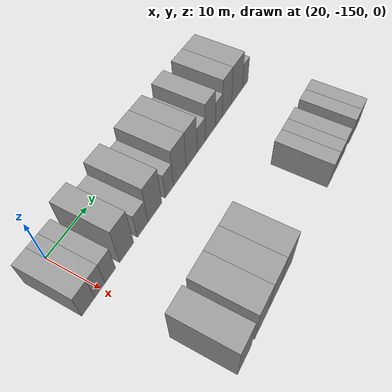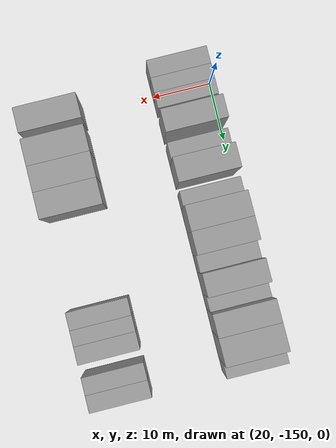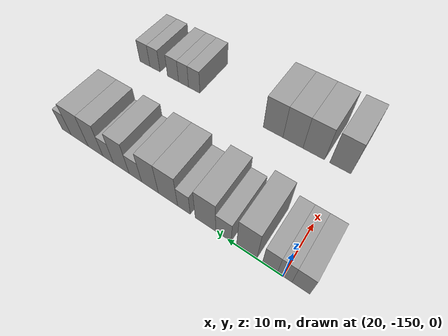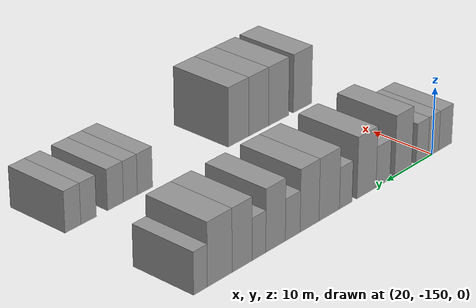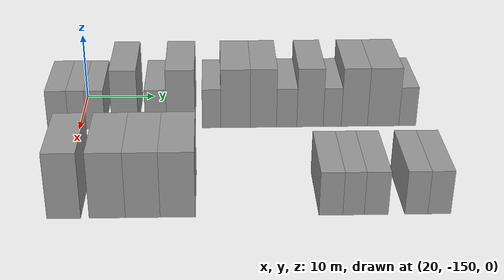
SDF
<sdf version="1.6">
 <world name="default">
  <model name="building_13">
   <static>1</static>
   <pose>25.0000 -152.9617 0 0.000000 0.000000 0.000000</pose>
   <link name="link">
    <pose>0 0 3.00 0 0 0</pose>
    <collision name="collision"><geometry><box><size>10.0000 2.9379 6.0000</size></box></geometry></collision>
    <visual name="visual">
     <cast_shadows>0</cast_shadows>
     <geometry><box><size>10.0000 2.9379 6.0000</size></box></geometry>
     <material>
      <script>
       <uri>model://grey_wall/materials/scripts</uri>
       <uri>model://grey_wall/materials/textures</uri>
       <name>vrc/grey_wall</name>
      </script>
     </material>
    </visual>
   </link>
  </model>
  <model name="building_14">
   <static>1</static>
   <pose>25.0000 -150.2623 0 0.000000 0.000000 0.000000</pose>
   <link name="link">
    <pose>0 0 3.00 0 0 0</pose>
    <collision name="collision"><geometry><box><size>10.0000 2.4608 6.0000</size></box></geometry></collision>
    <visual name="visual">
     <cast_shadows>0</cast_shadows>
     <geometry><box><size>10.0000 2.4608 6.0000</size></box></geometry>
     <material>
      <script>
       <uri>model://grey_wall/materials/scripts</uri>
       <uri>model://grey_wall/materials/textures</uri>
       <name>vrc/grey_wall</name>
      </script>
     </material>
    </visual>
   </link>
  </model>
  <model name="building_15">
   <static>1</static>
   <pose>25.0000 -147.7212 0 0.000000 0.000000 0.000000</pose>
   <link name="link">
    <pose>0 0 3.00 0 0 0</pose>
    <collision name="collision"><geometry><box><size>10.0000 2.6214 6.0000</size></box></geometry></collision>
    <visual name="visual">
     <cast_shadows>0</cast_shadows>
     <geometry><box><size>10.0000 2.6214 6.0000</size></box></geometry>
     <material>
      <script>
       <uri>model://grey_wall/materials/scripts</uri>
       <uri>model://grey_wall/materials/textures</uri>
       <name>vrc/grey_wall</name>
      </script>
     </material>
    </visual>
   </link>
  </model>
  <model name="building_16">
   <static>1</static>
   <pose>25.0000 -143.5604 0 0.000000 0.000000 0.000000</pose>
   <link name="link">
    <pose>0 0 4.50 0 0 0</pose>
    <collision name="collision"><geometry><box><size>10.0000 3.7002 9.0000</size></box></geometry></collision>
    <visual name="visual">
     <cast_shadows>0</cast_shadows>
     <geometry><box><size>10.0000 3.7002 9.0000</size></box></geometry>
     <material>
      <script>
       <uri>model://grey_wall/materials/scripts</uri>
       <uri>model://grey_wall/materials/textures</uri>
       <name>vrc/grey_wall</name>
      </script>
     </material>
    </visual>
   </link>
  </model>
  <model name="building_17">
   <static>1</static>
   <pose>25.0000 -139.2249 0 0.000000 0.000000 0.000000</pose>
   <link name="link">
    <pose>0 0 3.00 0 0 0</pose>
    <collision name="collision"><geometry><box><size>10.0000 2.9709 6.0000</size></box></geometry></collision>
    <visual name="visual">
     <cast_shadows>0</cast_shadows>
     <geometry><box><size>10.0000 2.9709 6.0000</size></box></geometry>
     <material>
      <script>
       <uri>model://grey_wall/materials/scripts</uri>
       <uri>model://grey_wall/materials/textures</uri>
       <name>vrc/grey_wall</name>
      </script>
     </material>
    </visual>
   </link>
  </model>
  <model name="building_18">
   <static>1</static>
   <pose>25.0000 -135.7327 0 0.000000 0.000000 0.000000</pose>
   <link name="link">
    <pose>0 0 4.50 0 0 0</pose>
    <collision name="collision"><geometry><box><size>10.0000 4.0134 9.0000</size></box></geometry></collision>
    <visual name="visual">
     <cast_shadows>0</cast_shadows>
     <geometry><box><size>10.0000 4.0134 9.0000</size></box></geometry>
     <material>
      <script>
       <uri>model://grey_wall/materials/scripts</uri>
       <uri>model://grey_wall/materials/textures</uri>
       <name>vrc/grey_wall</name>
      </script>
     </material>
    </visual>
   </link>
  </model>
  <model name="building_19">
   <static>1</static>
   <pose>25.0000 -131.4297 0 0.000000 0.000000 0.000000</pose>
   <link name="link">
    <pose>0 0 3.00 0 0 0</pose>
    <collision name="collision"><geometry><box><size>10.0000 2.5926 6.0000</size></box></geometry></collision>
    <visual name="visual">
     <cast_shadows>0</cast_shadows>
     <geometry><box><size>10.0000 2.5926 6.0000</size></box></geometry>
     <material>
      <script>
       <uri>model://grey_wall/materials/scripts</uri>
       <uri>model://grey_wall/materials/textures</uri>
       <name>vrc/grey_wall</name>
      </script>
     </material>
    </visual>
   </link>
  </model>
  <model name="building_20">
   <static>1</static>
   <pose>25.0000 -128.0775 0 0.000000 0.000000 0.000000</pose>
   <link name="link">
    <pose>0 0 4.50 0 0 0</pose>
    <collision name="collision"><geometry><box><size>10.0000 4.1117 9.0000</size></box></geometry></collision>
    <visual name="visual">
     <cast_shadows>0</cast_shadows>
     <geometry><box><size>10.0000 4.1117 9.0000</size></box></geometry>
     <material>
      <script>
       <uri>model://grey_wall/materials/scripts</uri>
       <uri>model://grey_wall/materials/textures</uri>
       <name>vrc/grey_wall</name>
      </script>
     </material>
    </visual>
   </link>
  </model>
  <model name="building_21">
   <static>1</static>
   <pose>25.0000 -124.1487 0 0.000000 0.000000 0.000000</pose>
   <link name="link">
    <pose>0 0 4.50 0 0 0</pose>
    <collision name="collision"><geometry><box><size>10.0000 3.7458 9.0000</size></box></geometry></collision>
    <visual name="visual">
     <cast_shadows>0</cast_shadows>
     <geometry><box><size>10.0000 3.7458 9.0000</size></box></geometry>
     <material>
      <script>
       <uri>model://grey_wall/materials/scripts</uri>
       <uri>model://grey_wall/materials/textures</uri>
       <name>vrc/grey_wall</name>
      </script>
     </material>
    </visual>
   </link>
  </model>
  <model name="building_22">
   <static>1</static>
   <pose>25.0000 -120.8417 0 0.000000 0.000000 0.000000</pose>
   <link name="link">
    <pose>0 0 3.00 0 0 0</pose>
    <collision name="collision"><geometry><box><size>10.0000 2.8683 6.0000</size></box></geometry></collision>
    <visual name="visual">
     <cast_shadows>0</cast_shadows>
     <geometry><box><size>10.0000 2.8683 6.0000</size></box></geometry>
     <material>
      <script>
       <uri>model://grey_wall/materials/scripts</uri>
       <uri>model://grey_wall/materials/textures</uri>
       <name>vrc/grey_wall</name>
      </script>
     </material>
    </visual>
   </link>
  </model>
  <model name="building_23">
   <static>1</static>
   <pose>25.0000 -117.5402 0 0.000000 0.000000 0.000000</pose>
   <link name="link">
    <pose>0 0 4.50 0 0 0</pose>
    <collision name="collision"><geometry><box><size>10.0000 3.7347 9.0000</size></box></geometry></collision>
    <visual name="visual">
     <cast_shadows>0</cast_shadows>
     <geometry><box><size>10.0000 3.7347 9.0000</size></box></geometry>
     <material>
      <script>
       <uri>model://grey_wall/materials/scripts</uri>
       <uri>model://grey_wall/materials/textures</uri>
       <name>vrc/grey_wall</name>
      </script>
     </material>
    </visual>
   </link>
  </model>
  <model name="building_24">
   <static>1</static>
   <pose>25.0000 -114.3938 0 0.000000 0.000000 0.000000</pose>
   <link name="link">
    <pose>0 0 3.00 0 0 0</pose>
    <collision name="collision"><geometry><box><size>10.0000 2.5581 6.0000</size></box></geometry></collision>
    <visual name="visual">
     <cast_shadows>0</cast_shadows>
     <geometry><box><size>10.0000 2.5581 6.0000</size></box></geometry>
     <material>
      <script>
       <uri>model://grey_wall/materials/scripts</uri>
       <uri>model://grey_wall/materials/textures</uri>
       <name>vrc/grey_wall</name>
      </script>
     </material>
    </visual>
   </link>
  </model>
  <model name="building_25">
   <static>1</static>
   <pose>25.0000 -111.2595 0 0.000000 0.000000 0.000000</pose>
   <link name="link">
    <pose>0 0 4.50 0 0 0</pose>
    <collision name="collision"><geometry><box><size>10.0000 3.7104 9.0000</size></box></geometry></collision>
    <visual name="visual">
     <cast_shadows>0</cast_shadows>
     <geometry><box><size>10.0000 3.7104 9.0000</size></box></geometry>
     <material>
      <script>
       <uri>model://grey_wall/materials/scripts</uri>
       <uri>model://grey_wall/materials/textures</uri>
       <name>vrc/grey_wall</name>
      </script>
     </material>
    </visual>
   </link>
  </model>
  <model name="building_26">
   <static>1</static>
   <pose>25.0000 -107.1808 0 0.000000 0.000000 0.000000</pose>
   <link name="link">
    <pose>0 0 4.50 0 0 0</pose>
    <collision name="collision"><geometry><box><size>10.0000 4.4472 9.0000</size></box></geometry></collision>
    <visual name="visual">
     <cast_shadows>0</cast_shadows>
     <geometry><box><size>10.0000 4.4472 9.0000</size></box></geometry>
     <material>
      <script>
       <uri>model://grey_wall/materials/scripts</uri>
       <uri>model://grey_wall/materials/textures</uri>
       <name>vrc/grey_wall</name>
      </script>
     </material>
    </visual>
   </link>
  </model>
  <model name="building_27">
   <static>1</static>
   <pose>25.0000 -103.7387 0 0.000000 0.000000 0.000000</pose>
   <link name="link">
    <pose>0 0 3.00 0 0 0</pose>
    <collision name="collision"><geometry><box><size>10.0000 2.4370 6.0000</size></box></geometry></collision>
    <visual name="visual">
     <cast_shadows>0</cast_shadows>
     <geometry><box><size>10.0000 2.4370 6.0000</size></box></geometry>
     <material>
      <script>
       <uri>model://grey_wall/materials/scripts</uri>
       <uri>model://grey_wall/materials/textures</uri>
       <name>vrc/grey_wall</name>
      </script>
     </material>
    </visual>
   </link>
  </model>
  <model name="building_112">
   <static>1</static>
   <pose>47.0000 -149.1533 0 0.000000 0.000000 0.000000</pose>
   <link name="link">
    <pose>0 0 4.50 0 0 0</pose>
    <collision name="collision"><geometry><box><size>10.0000 4.0453 9.0000</size></box></geometry></collision>
    <visual name="visual">
     <cast_shadows>0</cast_shadows>
     <geometry><box><size>10.0000 4.0453 9.0000</size></box></geometry>
     <material>
      <script>
       <uri>model://grey_wall/materials/scripts</uri>
       <uri>model://grey_wall/materials/textures</uri>
       <name>vrc/grey_wall</name>
      </script>
     </material>
    </visual>
   </link>
  </model>
  <model name="building_113">
   <static>1</static>
   <pose>47.0000 -143.9666 0 0.000000 0.000000 0.000000</pose>
   <link name="link">
    <pose>0 0 4.50 0 0 0</pose>
    <collision name="collision"><geometry><box><size>10.0000 4.3280 9.0000</size></box></geometry></collision>
    <visual name="visual">
     <cast_shadows>0</cast_shadows>
     <geometry><box><size>10.0000 4.3280 9.0000</size></box></geometry>
     <material>
      <script>
       <uri>model://grey_wall/materials/scripts</uri>
       <uri>model://grey_wall/materials/textures</uri>
       <name>vrc/grey_wall</name>
      </script>
     </material>
    </visual>
   </link>
  </model>
  <model name="building_114">
   <static>1</static>
   <pose>47.0000 -139.7237 0 0.000000 0.000000 0.000000</pose>
   <link name="link">
    <pose>0 0 4.50 0 0 0</pose>
    <collision name="collision"><geometry><box><size>10.0000 4.1579 9.0000</size></box></geometry></collision>
    <visual name="visual">
     <cast_shadows>0</cast_shadows>
     <geometry><box><size>10.0000 4.1579 9.0000</size></box></geometry>
     <material>
      <script>
       <uri>model://grey_wall/materials/scripts</uri>
       <uri>model://grey_wall/materials/textures</uri>
       <name>vrc/grey_wall</name>
      </script>
     </material>
    </visual>
   </link>
  </model>
  <model name="building_115">
   <static>1</static>
   <pose>47.0000 -135.5289 0 0.000000 0.000000 0.000000</pose>
   <link name="link">
    <pose>0 0 4.50 0 0 0</pose>
    <collision name="collision"><geometry><box><size>10.0000 4.2317 9.0000</size></box></geometry></collision>
    <visual name="visual">
     <cast_shadows>0</cast_shadows>
     <geometry><box><size>10.0000 4.2317 9.0000</size></box></geometry>
     <material>
      <script>
       <uri>model://grey_wall/materials/scripts</uri>
       <uri>model://grey_wall/materials/textures</uri>
       <name>vrc/grey_wall</name>
      </script>
     </material>
    </visual>
   </link>
  </model>
  <model name="building_116">
   <static>1</static>
   <pose>47.0000 -117.1264 0 0.000000 0.000000 0.000000</pose>
   <link name="link">
    <pose>0 0 3.00 0 0 0</pose>
    <collision name="collision"><geometry><box><size>10.0000 2.8578 6.0000</size></box></geometry></collision>
    <visual name="visual">
     <cast_shadows>0</cast_shadows>
     <geometry><box><size>10.0000 2.8578 6.0000</size></box></geometry>
     <material>
      <script>
       <uri>model://grey_wall/materials/scripts</uri>
       <uri>model://grey_wall/materials/textures</uri>
       <name>vrc/grey_wall</name>
      </script>
     </material>
    </visual>
   </link>
  </model>
  <model name="building_117">
   <static>1</static>
   <pose>47.0000 -114.4094 0 0.000000 0.000000 0.000000</pose>
   <link name="link">
    <pose>0 0 3.00 0 0 0</pose>
    <collision name="collision"><geometry><box><size>10.0000 2.5762 6.0000</size></box></geometry></collision>
    <visual name="visual">
     <cast_shadows>0</cast_shadows>
     <geometry><box><size>10.0000 2.5762 6.0000</size></box></geometry>
     <material>
      <script>
       <uri>model://grey_wall/materials/scripts</uri>
       <uri>model://grey_wall/materials/textures</uri>
       <name>vrc/grey_wall</name>
      </script>
     </material>
    </visual>
   </link>
  </model>
  <model name="building_118">
   <static>1</static>
   <pose>47.0000 -111.6615 0 0.000000 0.000000 0.000000</pose>
   <link name="link">
    <pose>0 0 3.00 0 0 0</pose>
    <collision name="collision"><geometry><box><size>10.0000 2.9197 6.0000</size></box></geometry></collision>
    <visual name="visual">
     <cast_shadows>0</cast_shadows>
     <geometry><box><size>10.0000 2.9197 6.0000</size></box></geometry>
     <material>
      <script>
       <uri>model://grey_wall/materials/scripts</uri>
       <uri>model://grey_wall/materials/textures</uri>
       <name>vrc/grey_wall</name>
      </script>
     </material>
    </visual>
   </link>
  </model>
  <model name="building_119">
   <static>1</static>
   <pose>47.0000 -106.8124 0 0.000000 0.000000 0.000000</pose>
   <link name="link">
    <pose>0 0 3.00 0 0 0</pose>
    <collision name="collision"><geometry><box><size>10.0000 2.7784 6.0000</size></box></geometry></collision>
    <visual name="visual">
     <cast_shadows>0</cast_shadows>
     <geometry><box><size>10.0000 2.7784 6.0000</size></box></geometry>
     <material>
      <script>
       <uri>model://grey_wall/materials/scripts</uri>
       <uri>model://grey_wall/materials/textures</uri>
       <name>vrc/grey_wall</name>
      </script>
     </material>
    </visual>
   </link>
  </model>
  <model name="building_120">
   <static>1</static>
   <pose>47.0000 -104.0270 0 0.000000 0.000000 0.000000</pose>
   <link name="link">
    <pose>0 0 3.00 0 0 0</pose>
    <collision name="collision"><geometry><box><size>10.0000 2.7924 6.0000</size></box></geometry></collision>
    <visual name="visual">
     <cast_shadows>0</cast_shadows>
     <geometry><box><size>10.0000 2.7924 6.0000</size></box></geometry>
     <material>
      <script>
       <uri>model://grey_wall/materials/scripts</uri>
       <uri>model://grey_wall/materials/textures</uri>
       <name>vrc/grey_wall</name>
      </script>
     </material>
    </visual>
   </link>
  </model>
 </world>
</sdf>
